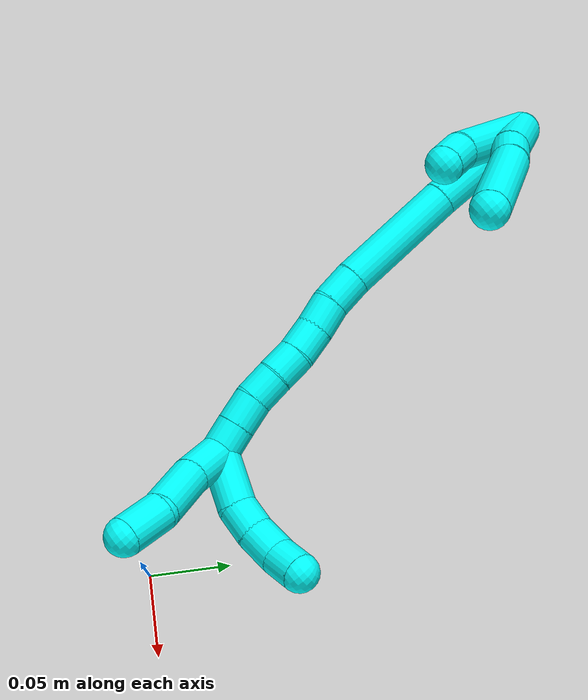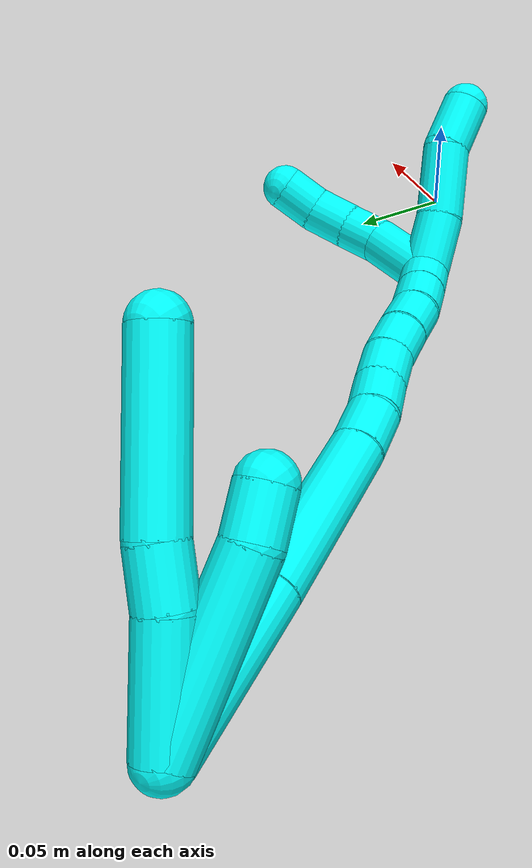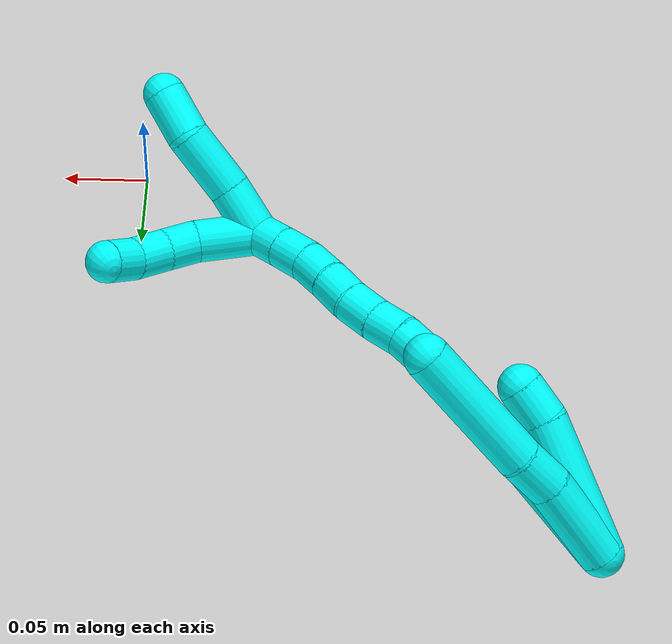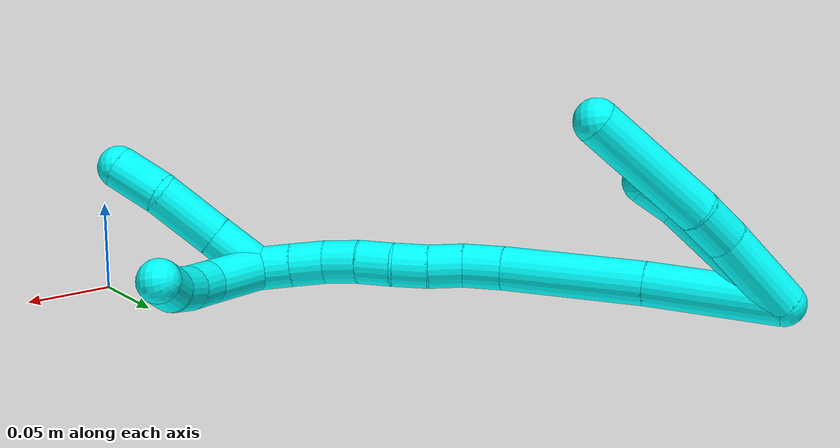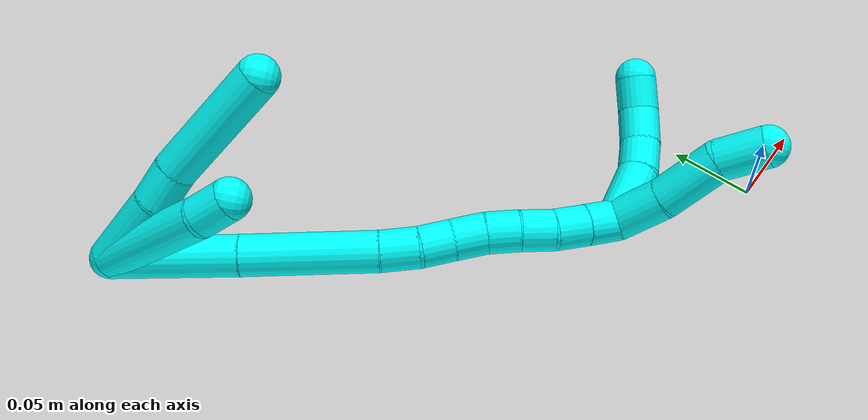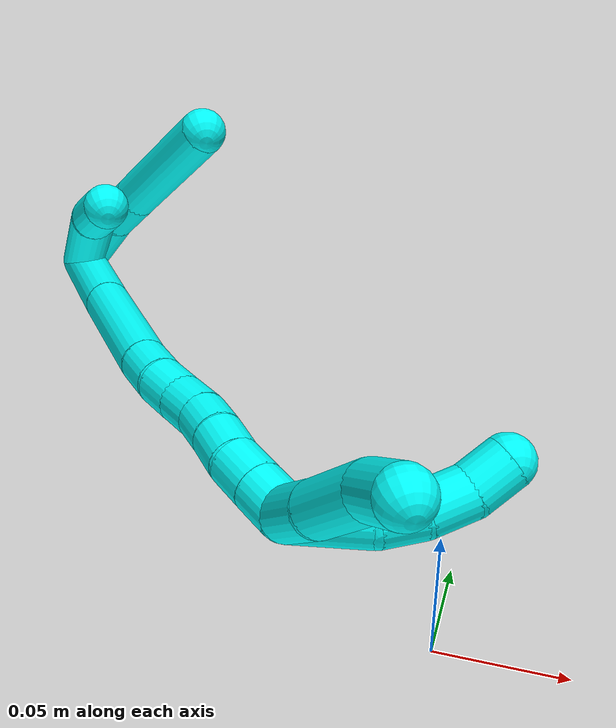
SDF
<sdf version="1.7">
 <world name="default">
  <model name="photoneo_s_sensor">
   <static>1</static>
   <pose>0 0 2 1.57079 1.57079 3.14159</pose>
   <link name="link">
    <inertial><mass>0.1</mass></inertial>
    <sensor name="sensor" type="depth">
     <update_rate>30</update_rate>
     <camera>
      <horizontal_fov>1.22</horizontal_fov>
      <image><width>1920</width><height>1200</height><format>B8G8R8</format></image>
      <clip><near>0.1</near><far>4</far></clip>
      <depth_camera><output>points</output></depth_camera>
     </camera>
     <plugin name="camera_plugin" filename="libgazebo_ros_depth_camera.so">
      <baseline>0.2</baseline>
      <alwaysOn>1</alwaysOn>
      <updateRate>0.0</updateRate>
      <cameraName>camera_ir</cameraName>
      <imageTopicName>/camera/color/image_raw</imageTopicName>
      <cameraInfoTopicName>/camera/color/camera_info</cameraInfoTopicName>
      <depthImageTopicName>/camera/depth/image_raw</depthImageTopicName>
      <depthImageCameraInfoTopicName>/camera/depth/camera_info</depthImageCameraInfoTopicName>
      <pointCloudTopicName>/camera/depth/points</pointCloudTopicName>
      <frameName>fr_optical</frameName>
      <pointCloudCutoff>0.1</pointCloudCutoff>
      <pointCloudCutoffMax>2.0</pointCloudCutoffMax>
      <distortionK1>0</distortionK1>
      <distortionK2>0</distortionK2>
      <distortionK3>0</distortionK3>
      <distortionT1>0</distortionT1>
      <distortionT2>0</distortionT2>
      <CxPrime>0</CxPrime>
      <Cx>0</Cx>
      <Cy>0</Cy>
      <focalLength>0</focalLength>
      <hackBaseline>0</hackBaseline>
     </plugin>
    </sensor>
   </link>
  </model>
  <model name="bin">
   <static>1</static>
   <link name="bottom">
    <collision name="collision-bottom">
     <pose>0 0 -0.01 0 -0 0</pose>
     <geometry><box><size>0.8 0.6 0.02</size></box></geometry>
     <surface>
      <friction><ode><mu>100</mu><mu2>100</mu2></ode></friction>
      <contact><collide_bitmask>65535</collide_bitmask></contact>
     </surface>
    </collision>
   </link>
   <link name="west_wall">
    <collision name="collision-west_wall">
     <pose>-0.41 0 0.1 0 -0 0</pose>
     <geometry><box><size>0.02 0.6 0.2</size></box></geometry>
     <surface>
      <friction><ode><mu>100</mu><mu2>100</mu2></ode></friction>
      <contact><collide_bitmask>65535</collide_bitmask></contact>
     </surface>
    </collision>
   </link>
   <link name="east_wall">
    <collision name="collision-east_wall">
     <pose>0.41 0 0.1 0 -0 0</pose>
     <geometry><box><size>0.02 0.6 0.2</size></box></geometry>
     <surface>
      <friction><ode><mu>100</mu><mu2>100</mu2></ode></friction>
      <contact><collide_bitmask>65535</collide_bitmask></contact>
     </surface>
    </collision>
   </link>
   <link name="south_wall">
    <collision name="collision-south_wall">
     <pose>0 -0.31 0.1 0 -0 0</pose>
     <geometry><box><size>0.8 0.02 0.2</size></box></geometry>
     <surface>
      <friction><ode><mu>100</mu><mu2>100</mu2></ode></friction>
      <contact><collide_bitmask>65535</collide_bitmask></contact>
     </surface>
    </collision>
   </link>
   <link name="north_wall">
    <collision name="collision-north_wall">
     <pose>0 0.31 0.1 0 -0 0</pose>
     <geometry><box><size>0.8 0.02 0.2</size></box></geometry>
     <surface>
      <friction><ode><mu>100</mu><mu2>100</mu2></ode></friction>
      <contact><collide_bitmask>65535</collide_bitmask></contact>
     </surface>
    </collision>
   </link>
  </model>
  <model name="3">
   <static>0</static>
   <link name="3">
    <collision name="collision-cylinder-e_1_2_8">
     <pose>0.009431 -0.021246 -0.009501 1.9913 0.385019 0.584182</pose>
     <geometry><cylinder><radius>0.0125</radius><length>0.050223</length></cylinder></geometry>
     <surface>
      <friction><ode><mu>1.16</mu><mu2>1.16</mu2><slip1>0</slip1><slip2>0</slip2></ode></friction>
      <contact><ode><kp>1e+06</kp><kd>1</kd><max_vel>0</max_vel><min_depth>0.001</min_depth></ode></contact>
     </surface>
    </collision>
    <visual name="visual-cylinder-e_1_2_8">
     <pose>0.009431 -0.021246 -0.009501 1.9913 0.385019 0.584182</pose>
     <geometry><cylinder><radius>0.0125</radius><length>0.050223</length></cylinder></geometry>
     <material><ambient>0.003922 1 0.996078 1</ambient></material>
    </visual>
    <collision name="collision-cylinder-e_2_8_9">
     <pose>0.02523 -0.052055 -0.023023 1.96884 0.550452 0.803887</pose>
     <geometry><cylinder><radius>0.0125</radius><length>0.024347</length></cylinder></geometry>
     <surface>
      <friction><ode><mu>1.16</mu><mu2>1.16</mu2><slip1>0</slip1><slip2>0</slip2></ode></friction>
      <contact><ode><kp>1e+06</kp><kd>1</kd><max_vel>0</max_vel><min_depth>0.001</min_depth></ode></contact>
     </surface>
    </collision>
    <visual name="visual-cylinder-e_2_8_9">
     <pose>0.02523 -0.052055 -0.023023 1.96884 0.550452 0.803887</pose>
     <geometry><cylinder><radius>0.0125</radius><length>0.024347</length></cylinder></geometry>
     <material><ambient>0.003922 1 0.996078 1</ambient></material>
    </visual>
    <collision name="collision-cylinder-e_3_9_6">
     <pose>0.048034 -0.091153 -0.043779 2.08632 0.450928 0.749938</pose>
     <geometry><cylinder><radius>0.0125</radius><length>0.07543</length></cylinder></geometry>
     <surface>
      <friction><ode><mu>1.16</mu><mu2>1.16</mu2><slip1>0</slip1><slip2>0</slip2></ode></friction>
      <contact><ode><kp>1e+06</kp><kd>1</kd><max_vel>0</max_vel><min_depth>0.001</min_depth></ode></contact>
     </surface>
    </collision>
    <visual name="visual-cylinder-e_3_9_6">
     <pose>0.048034 -0.091153 -0.043779 2.08632 0.450928 0.749938</pose>
     <geometry><cylinder><radius>0.0125</radius><length>0.07543</length></cylinder></geometry>
     <material><ambient>0.003922 1 0.996078 1</ambient></material>
    </visual>
    <collision name="collision-cylinder-e_1_2_10">
     <pose>0.002461 -0.031318 -0.023128 2.2069 0.063116 0.124952</pose>
     <geometry><cylinder><radius>0.0125</radius><length>0.07802</length></cylinder></geometry>
     <surface>
      <friction><ode><mu>1.16</mu><mu2>1.16</mu2><slip1>0</slip1><slip2>0</slip2></ode></friction>
      <contact><ode><kp>1e+06</kp><kd>1</kd><max_vel>0</max_vel><min_depth>0.001</min_depth></ode></contact>
     </surface>
    </collision>
    <visual name="visual-cylinder-e_1_2_10">
     <pose>0.002461 -0.031318 -0.023128 2.2069 0.063116 0.124952</pose>
     <geometry><cylinder><radius>0.0125</radius><length>0.07802</length></cylinder></geometry>
     <material><ambient>0.003922 1 0.996078 1</ambient></material>
    </visual>
    <collision name="collision-cylinder-e_2_10_5">
     <pose>0.007908 -0.070621 -0.053192 2.286 0.275202 0.589703</pose>
     <geometry><cylinder><radius>0.0125</radius><length>0.02198</length></cylinder></geometry>
     <surface>
      <friction><ode><mu>1.16</mu><mu2>1.16</mu2><slip1>0</slip1><slip2>0</slip2></ode></friction>
      <contact><ode><kp>1e+06</kp><kd>1</kd><max_vel>0</max_vel><min_depth>0.001</min_depth></ode></contact>
     </surface>
    </collision>
    <visual name="visual-cylinder-e_2_10_5">
     <pose>0.007908 -0.070621 -0.053192 2.286 0.275202 0.589703</pose>
     <geometry><cylinder><radius>0.0125</radius><length>0.02198</length></cylinder></geometry>
     <material><ambient>0.003922 1 0.996078 1</ambient></material>
    </visual>
    <collision name="collision-cylinder-e_1_2_11">
     <pose>0.004007 -0.010872 -0.03625 2.85022 0.105478 0.6907</pose>
     <geometry><cylinder><radius>0.0125</radius><length>0.076112</length></cylinder></geometry>
     <surface>
      <friction><ode><mu>1.16</mu><mu2>1.16</mu2><slip1>0</slip1><slip2>0</slip2></ode></friction>
      <contact><ode><kp>1e+06</kp><kd>1</kd><max_vel>0</max_vel><min_depth>0.001</min_depth></ode></contact>
     </surface>
    </collision>
    <visual name="visual-cylinder-e_1_2_11">
     <pose>0.004007 -0.010872 -0.03625 2.85022 0.105478 0.6907</pose>
     <geometry><cylinder><radius>0.0125</radius><length>0.076112</length></cylinder></geometry>
     <material><ambient>0.003922 1 0.996078 1</ambient></material>
    </visual>
    <collision name="collision-cylinder-e_2_11_12">
     <pose>0.013505 -0.032081 -0.111109 2.87997 0.136543 0.958632</pose>
     <geometry><cylinder><radius>0.0125</radius><length>0.08069</length></cylinder></geometry>
     <surface>
      <friction><ode><mu>1.16</mu><mu2>1.16</mu2><slip1>0</slip1><slip2>0</slip2></ode></friction>
      <contact><ode><kp>1e+06</kp><kd>1</kd><max_vel>0</max_vel><min_depth>0.001</min_depth></ode></contact>
     </surface>
    </collision>
    <visual name="visual-cylinder-e_2_11_12">
     <pose>0.013505 -0.032081 -0.111109 2.87997 0.136543 0.958632</pose>
     <geometry><cylinder><radius>0.0125</radius><length>0.08069</length></cylinder></geometry>
     <material><ambient>0.003922 1 0.996078 1</ambient></material>
    </visual>
    <collision name="collision-cylinder-e_3_12_13">
     <pose>0.021564 -0.045169 -0.16051 2.89212 0.226522 1.47354</pose>
     <geometry><cylinder><radius>0.0125</radius><length>0.022857</length></cylinder></geometry>
     <surface>
      <friction><ode><mu>1.16</mu><mu2>1.16</mu2><slip1>0</slip1><slip2>0</slip2></ode></friction>
      <contact><ode><kp>1e+06</kp><kd>1</kd><max_vel>0</max_vel><min_depth>0.001</min_depth></ode></contact>
     </surface>
    </collision>
    <visual name="visual-cylinder-e_3_12_13">
     <pose>0.021564 -0.045169 -0.16051 2.89212 0.226522 1.47354</pose>
     <geometry><cylinder><radius>0.0125</radius><length>0.022857</length></cylinder></geometry>
     <material><ambient>0.003922 1 0.996078 1</ambient></material>
    </visual>
    <collision name="collision-cylinder-e_4_13_14">
     <pose>0.027961 -0.04959 -0.180443 2.96069 0.390966 2.28256</pose>
     <geometry><cylinder><radius>0.0125</radius><length>0.020103</length></cylinder></geometry>
     <surface>
      <friction><ode><mu>1.16</mu><mu2>1.16</mu2><slip1>0</slip1><slip2>0</slip2></ode></friction>
      <contact><ode><kp>1e+06</kp><kd>1</kd><max_vel>0</max_vel><min_depth>0.001</min_depth></ode></contact>
     </surface>
    </collision>
    <visual name="visual-cylinder-e_4_13_14">
     <pose>0.027961 -0.04959 -0.180443 2.96069 0.390966 2.28256</pose>
     <geometry><cylinder><radius>0.0125</radius><length>0.020103</length></cylinder></geometry>
     <material><ambient>0.003922 1 0.996078 1</ambient></material>
    </visual>
    <collision name="collision-cylinder-e_5_14_15">
     <pose>0.035161 -0.053762 -0.19877 2.87588 0.340267 1.81931</pose>
     <geometry><cylinder><radius>0.0125</radius><length>0.020197</length></cylinder></geometry>
     <surface>
      <friction><ode><mu>1.16</mu><mu2>1.16</mu2><slip1>0</slip1><slip2>0</slip2></ode></friction>
      <contact><ode><kp>1e+06</kp><kd>1</kd><max_vel>0</max_vel><min_depth>0.001</min_depth></ode></contact>
     </surface>
    </collision>
    <visual name="visual-cylinder-e_5_14_15">
     <pose>0.035161 -0.053762 -0.19877 2.87588 0.340267 1.81931</pose>
     <geometry><cylinder><radius>0.0125</radius><length>0.020197</length></cylinder></geometry>
     <material><ambient>0.003922 1 0.996078 1</ambient></material>
    </visual>
    <collision name="collision-cylinder-e_6_15_16">
     <pose>0.040394 -0.058687 -0.217478 2.89218 0.187344 1.28627</pose>
     <geometry><cylinder><radius>0.0125</radius><length>0.020003</length></cylinder></geometry>
     <surface>
      <friction><ode><mu>1.16</mu><mu2>1.16</mu2><slip1>0</slip1><slip2>0</slip2></ode></friction>
      <contact><ode><kp>1e+06</kp><kd>1</kd><max_vel>0</max_vel><min_depth>0.001</min_depth></ode></contact>
     </surface>
    </collision>
    <visual name="visual-cylinder-e_6_15_16">
     <pose>0.040394 -0.058687 -0.217478 2.89218 0.187344 1.28627</pose>
     <geometry><cylinder><radius>0.0125</radius><length>0.020003</length></cylinder></geometry>
     <material><ambient>0.003922 1 0.996078 1</ambient></material>
    </visual>
    <collision name="collision-cylinder-e_7_16_17">
     <pose>0.044078 -0.062677 -0.236724 2.98208 0.182802 1.70732</pose>
     <geometry><cylinder><radius>0.0125</radius><length>0.020033</length></cylinder></geometry>
     <surface>
      <friction><ode><mu>1.16</mu><mu2>1.16</mu2><slip1>0</slip1><slip2>0</slip2></ode></friction>
      <contact><ode><kp>1e+06</kp><kd>1</kd><max_vel>0</max_vel><min_depth>0.001</min_depth></ode></contact>
     </surface>
    </collision>
    <visual name="visual-cylinder-e_7_16_17">
     <pose>0.044078 -0.062677 -0.236724 2.98208 0.182802 1.70732</pose>
     <geometry><cylinder><radius>0.0125</radius><length>0.020033</length></cylinder></geometry>
     <material><ambient>0.003922 1 0.996078 1</ambient></material>
    </visual>
    <collision name="collision-cylinder-e_8_17_18">
     <pose>0.049338 -0.065279 -0.255784 3.03091 0.35105 2.53606</pose>
     <geometry><cylinder><radius>0.0125</radius><length>0.020004</length></cylinder></geometry>
     <surface>
      <friction><ode><mu>1.16</mu><mu2>1.16</mu2><slip1>0</slip1><slip2>0</slip2></ode></friction>
      <contact><ode><kp>1e+06</kp><kd>1</kd><max_vel>0</max_vel><min_depth>0.001</min_depth></ode></contact>
     </surface>
    </collision>
    <visual name="visual-cylinder-e_8_17_18">
     <pose>0.049338 -0.065279 -0.255784 3.03091 0.35105 2.53606</pose>
     <geometry><cylinder><radius>0.0125</radius><length>0.020004</length></cylinder></geometry>
     <material><ambient>0.003922 1 0.996078 1</ambient></material>
    </visual>
    <collision name="collision-cylinder-e_9_18_1">
     <pose>0.05642 -0.067257 -0.274384 3.04046 0.372764 2.61717</pose>
     <geometry><cylinder><radius>0.0125</radius><length>0.020001</length></cylinder></geometry>
     <surface>
      <friction><ode><mu>1.16</mu><mu2>1.16</mu2><slip1>0</slip1><slip2>0</slip2></ode></friction>
      <contact><ode><kp>1e+06</kp><kd>1</kd><max_vel>0</max_vel><min_depth>0.001</min_depth></ode></contact>
     </surface>
    </collision>
    <visual name="visual-cylinder-e_9_18_1">
     <pose>0.05642 -0.067257 -0.274384 3.04046 0.372764 2.61717</pose>
     <geometry><cylinder><radius>0.0125</radius><length>0.020001</length></cylinder></geometry>
     <material><ambient>0.003922 1 0.996078 1</ambient></material>
    </visual>
    <collision name="collision-cylinder-e_1_1_19">
     <pose>0.063439 -0.08006 -0.293423 2.25994 0.216314 0.452415</pose>
     <geometry><cylinder><radius>0.0125</radius><length>0.031473</length></cylinder></geometry>
     <surface>
      <friction><ode><mu>1.16</mu><mu2>1.16</mu2><slip1>0</slip1><slip2>0</slip2></ode></friction>
      <contact><ode><kp>1e+06</kp><kd>1</kd><max_vel>0</max_vel><min_depth>0.001</min_depth></ode></contact>
     </surface>
    </collision>
    <visual name="visual-cylinder-e_1_1_19">
     <pose>0.063439 -0.08006 -0.293423 2.25994 0.216314 0.452415</pose>
     <geometry><cylinder><radius>0.0125</radius><length>0.031473</length></cylinder></geometry>
     <material><ambient>0.003922 1 0.996078 1</ambient></material>
    </visual>
    <collision name="collision-cylinder-e_2_19_20">
     <pose>0.073537 -0.107262 -0.313621 2.16766 0.347626 0.640392</pose>
     <geometry><cylinder><radius>0.0125</radius><length>0.039454</length></cylinder></geometry>
     <surface>
      <friction><ode><mu>1.16</mu><mu2>1.16</mu2><slip1>0</slip1><slip2>0</slip2></ode></friction>
      <contact><ode><kp>1e+06</kp><kd>1</kd><max_vel>0</max_vel><min_depth>0.001</min_depth></ode></contact>
     </surface>
    </collision>
    <visual name="visual-cylinder-e_2_19_20">
     <pose>0.073537 -0.107262 -0.313621 2.16766 0.347626 0.640392</pose>
     <geometry><cylinder><radius>0.0125</radius><length>0.039454</length></cylinder></geometry>
     <material><ambient>0.003922 1 0.996078 1</ambient></material>
    </visual>
    <collision name="collision-cylinder-e_3_20_4">
     <pose>0.081969 -0.132261 -0.334773 2.40857 0.118018 0.305415</pose>
     <geometry><cylinder><radius>0.0125</radius><length>0.029073</length></cylinder></geometry>
     <surface>
      <friction><ode><mu>1.16</mu><mu2>1.16</mu2><slip1>0</slip1><slip2>0</slip2></ode></friction>
      <contact><ode><kp>1e+06</kp><kd>1</kd><max_vel>0</max_vel><min_depth>0.001</min_depth></ode></contact>
     </surface>
    </collision>
    <visual name="visual-cylinder-e_3_20_4">
     <pose>0.081969 -0.132261 -0.334773 2.40857 0.118018 0.305415</pose>
     <geometry><cylinder><radius>0.0125</radius><length>0.029073</length></cylinder></geometry>
     <material><ambient>0.003922 1 0.996078 1</ambient></material>
    </visual>
    <collision name="collision-cylinder-e_1_1_21">
     <pose>0.077724 -0.06907 -0.289264 2.98729 1.25958 2.93024</pose>
     <geometry><cylinder><radius>0.0125</radius><length>0.037106</length></cylinder></geometry>
     <surface>
      <friction><ode><mu>1.16</mu><mu2>1.16</mu2><slip1>0</slip1><slip2>0</slip2></ode></friction>
      <contact><ode><kp>1e+06</kp><kd>1</kd><max_vel>0</max_vel><min_depth>0.001</min_depth></ode></contact>
     </surface>
    </collision>
    <visual name="visual-cylinder-e_1_1_21">
     <pose>0.077724 -0.06907 -0.289264 2.98729 1.25958 2.93024</pose>
     <geometry><cylinder><radius>0.0125</radius><length>0.037106</length></cylinder></geometry>
     <material><ambient>0.003922 1 0.996078 1</ambient></material>
    </visual>
    <collision name="collision-cylinder-e_2_21_22">
     <pose>0.105487 -0.070749 -0.294902 1.60068 1.4912 1.52102</pose>
     <geometry><cylinder><radius>0.0125</radius><length>0.020268</length></cylinder></geometry>
     <surface>
      <friction><ode><mu>1.16</mu><mu2>1.16</mu2><slip1>0</slip1><slip2>0</slip2></ode></friction>
      <contact><ode><kp>1e+06</kp><kd>1</kd><max_vel>0</max_vel><min_depth>0.001</min_depth></ode></contact>
     </surface>
    </collision>
    <visual name="visual-cylinder-e_2_21_22">
     <pose>0.105487 -0.070749 -0.294902 1.60068 1.4912 1.52102</pose>
     <geometry><cylinder><radius>0.0125</radius><length>0.020268</length></cylinder></geometry>
     <material><ambient>0.003922 1 0.996078 1</ambient></material>
    </visual>
    <collision name="collision-cylinder-e_3_22_23">
     <pose>0.126265 -0.073585 -0.293155 0.853629 1.32363 0.680958</pose>
     <geometry><cylinder><radius>0.0125</radius><length>0.02202</length></cylinder></geometry>
     <surface>
      <friction><ode><mu>1.16</mu><mu2>1.16</mu2><slip1>0</slip1><slip2>0</slip2></ode></friction>
      <contact><ode><kp>1e+06</kp><kd>1</kd><max_vel>0</max_vel><min_depth>0.001</min_depth></ode></contact>
     </surface>
    </collision>
    <visual name="visual-cylinder-e_3_22_23">
     <pose>0.126265 -0.073585 -0.293155 0.853629 1.32363 0.680958</pose>
     <geometry><cylinder><radius>0.0125</radius><length>0.02202</length></cylinder></geometry>
     <material><ambient>0.003922 1 0.996078 1</ambient></material>
    </visual>
    <collision name="collision-cylinder-e_4_23_3">
     <pose>0.145848 -0.07989 -0.288466 0.97171 1.04435 0.59003</pose>
     <geometry><cylinder><radius>0.0125</radius><length>0.020606</length></cylinder></geometry>
     <surface>
      <friction><ode><mu>1.16</mu><mu2>1.16</mu2><slip1>0</slip1><slip2>0</slip2></ode></friction>
      <contact><ode><kp>1e+06</kp><kd>1</kd><max_vel>0</max_vel><min_depth>0.001</min_depth></ode></contact>
     </surface>
    </collision>
    <visual name="visual-cylinder-e_4_23_3">
     <pose>0.145848 -0.07989 -0.288466 0.97171 1.04435 0.59003</pose>
     <geometry><cylinder><radius>0.0125</radius><length>0.020606</length></cylinder></geometry>
     <material><ambient>0.003922 1 0.996078 1</ambient></material>
    </visual>
    <collision name="collision-sphere-3">
     <pose>0.154756 -0.084165 -0.285546 0 -0 0</pose>
     <geometry><sphere><radius>0.0125</radius></sphere></geometry>
     <surface>
      <friction><ode><mu>1.16</mu><mu2>1.16</mu2><slip1>0</slip1><slip2>0</slip2></ode></friction>
      <contact><ode><kp>1e+06</kp><kd>1</kd><max_vel>0</max_vel><min_depth>0.001</min_depth></ode></contact>
     </surface>
    </collision>
    <visual name="visual-sphere-3">
     <pose>0.154756 -0.084165 -0.285546 0 -0 0</pose>
     <geometry><sphere><radius>0.0125</radius></sphere></geometry>
     <material><ambient>0.003922 1 0.996078 1</ambient></material>
    </visual>
    <collision name="collision-sphere-23">
     <pose>0.13694 -0.075615 -0.291385 0 -0 0</pose>
     <geometry><sphere><radius>0.0125</radius></sphere></geometry>
     <surface>
      <friction><ode><mu>1.16</mu><mu2>1.16</mu2><slip1>0</slip1><slip2>0</slip2></ode></friction>
      <contact><ode><kp>1e+06</kp><kd>1</kd><max_vel>0</max_vel><min_depth>0.001</min_depth></ode></contact>
     </surface>
    </collision>
    <visual name="visual-sphere-23">
     <pose>0.13694 -0.075615 -0.291385 0 -0 0</pose>
     <geometry><sphere><radius>0.0125</radius></sphere></geometry>
     <material><ambient>0.003922 1 0.996078 1</ambient></material>
    </visual>
    <collision name="collision-sphere-22">
     <pose>0.115589 -0.071554 -0.294926 0 -0 0</pose>
     <geometry><sphere><radius>0.0125</radius></sphere></geometry>
     <surface>
      <friction><ode><mu>1.16</mu><mu2>1.16</mu2><slip1>0</slip1><slip2>0</slip2></ode></friction>
      <contact><ode><kp>1e+06</kp><kd>1</kd><max_vel>0</max_vel><min_depth>0.001</min_depth></ode></contact>
     </surface>
    </collision>
    <visual name="visual-sphere-22">
     <pose>0.115589 -0.071554 -0.294926 0 -0 0</pose>
     <geometry><sphere><radius>0.0125</radius></sphere></geometry>
     <material><ambient>0.003922 1 0.996078 1</ambient></material>
    </visual>
    <collision name="collision-sphere-21">
     <pose>0.095385 -0.069944 -0.294877 0 -0 0</pose>
     <geometry><sphere><radius>0.0125</radius></sphere></geometry>
     <surface>
      <friction><ode><mu>1.16</mu><mu2>1.16</mu2><slip1>0</slip1><slip2>0</slip2></ode></friction>
      <contact><ode><kp>1e+06</kp><kd>1</kd><max_vel>0</max_vel><min_depth>0.001</min_depth></ode></contact>
     </surface>
    </collision>
    <visual name="visual-sphere-21">
     <pose>0.095385 -0.069944 -0.294877 0 -0 0</pose>
     <geometry><sphere><radius>0.0125</radius></sphere></geometry>
     <material><ambient>0.003922 1 0.996078 1</ambient></material>
    </visual>
    <collision name="collision-sphere-4">
     <pose>0.083681 -0.14192 -0.345501 0 -0 0</pose>
     <geometry><sphere><radius>0.0125</radius></sphere></geometry>
     <surface>
      <friction><ode><mu>1.16</mu><mu2>1.16</mu2><slip1>0</slip1><slip2>0</slip2></ode></friction>
      <contact><ode><kp>1e+06</kp><kd>1</kd><max_vel>0</max_vel><min_depth>0.001</min_depth></ode></contact>
     </surface>
    </collision>
    <visual name="visual-sphere-4">
     <pose>0.083681 -0.14192 -0.345501 0 -0 0</pose>
     <geometry><sphere><radius>0.0125</radius></sphere></geometry>
     <material><ambient>0.003922 1 0.996078 1</ambient></material>
    </visual>
    <collision name="collision-sphere-20">
     <pose>0.080258 -0.122602 -0.324046 0 -0 0</pose>
     <geometry><sphere><radius>0.0125</radius></sphere></geometry>
     <surface>
      <friction><ode><mu>1.16</mu><mu2>1.16</mu2><slip1>0</slip1><slip2>0</slip2></ode></friction>
      <contact><ode><kp>1e+06</kp><kd>1</kd><max_vel>0</max_vel><min_depth>0.001</min_depth></ode></contact>
     </surface>
    </collision>
    <visual name="visual-sphere-20">
     <pose>0.080258 -0.122602 -0.324046 0 -0 0</pose>
     <geometry><sphere><radius>0.0125</radius></sphere></geometry>
     <material><ambient>0.003922 1 0.996078 1</ambient></material>
    </visual>
    <collision name="collision-sphere-5">
     <pose>0.010894 -0.078605 -0.060128 0 -0 0</pose>
     <geometry><sphere><radius>0.0125</radius></sphere></geometry>
     <surface>
      <friction><ode><mu>1.16</mu><mu2>1.16</mu2><slip1>0</slip1><slip2>0</slip2></ode></friction>
      <contact><ode><kp>1e+06</kp><kd>1</kd><max_vel>0</max_vel><min_depth>0.001</min_depth></ode></contact>
     </surface>
    </collision>
    <visual name="visual-sphere-5">
     <pose>0.010894 -0.078605 -0.060128 0 -0 0</pose>
     <geometry><sphere><radius>0.0125</radius></sphere></geometry>
     <material><ambient>0.003922 1 0.996078 1</ambient></material>
    </visual>
    <collision name="collision-sphere-10">
     <pose>0.004921 -0.062636 -0.046256 0 -0 0</pose>
     <geometry><sphere><radius>0.0125</radius></sphere></geometry>
     <surface>
      <friction><ode><mu>1.16</mu><mu2>1.16</mu2><slip1>0</slip1><slip2>0</slip2></ode></friction>
      <contact><ode><kp>1e+06</kp><kd>1</kd><max_vel>0</max_vel><min_depth>0.001</min_depth></ode></contact>
     </surface>
    </collision>
    <visual name="visual-sphere-10">
     <pose>0.004921 -0.062636 -0.046256 0 -0 0</pose>
     <geometry><sphere><radius>0.0125</radius></sphere></geometry>
     <material><ambient>0.003922 1 0.996078 1</ambient></material>
    </visual>
    <collision name="collision-sphere-6">
     <pose>0.06447 -0.120687 -0.060514 0 -0 0</pose>
     <geometry><sphere><radius>0.0125</radius></sphere></geometry>
     <surface>
      <friction><ode><mu>1.16</mu><mu2>1.16</mu2><slip1>0</slip1><slip2>0</slip2></ode></friction>
      <contact><ode><kp>1e+06</kp><kd>1</kd><max_vel>0</max_vel><min_depth>0.001</min_depth></ode></contact>
     </surface>
    </collision>
    <visual name="visual-sphere-6">
     <pose>0.06447 -0.120687 -0.060514 0 -0 0</pose>
     <geometry><sphere><radius>0.0125</radius></sphere></geometry>
     <material><ambient>0.003922 1 0.996078 1</ambient></material>
    </visual>
    <collision name="collision-sphere-9">
     <pose>0.031598 -0.06162 -0.027045 0 -0 0</pose>
     <geometry><sphere><radius>0.0125</radius></sphere></geometry>
     <surface>
      <friction><ode><mu>1.16</mu><mu2>1.16</mu2><slip1>0</slip1><slip2>0</slip2></ode></friction>
      <contact><ode><kp>1e+06</kp><kd>1</kd><max_vel>0</max_vel><min_depth>0.001</min_depth></ode></contact>
     </surface>
    </collision>
    <visual name="visual-sphere-9">
     <pose>0.031598 -0.06162 -0.027045 0 -0 0</pose>
     <geometry><sphere><radius>0.0125</radius></sphere></geometry>
     <material><ambient>0.003922 1 0.996078 1</ambient></material>
    </visual>
    <collision name="collision-sphere-2">
     <geometry><sphere><radius>0.0125</radius></sphere></geometry>
     <surface>
      <friction><ode><mu>1.16</mu><mu2>1.16</mu2><slip1>0</slip1><slip2>0</slip2></ode></friction>
      <contact><ode><kp>1e+06</kp><kd>1</kd><max_vel>0</max_vel><min_depth>0.001</min_depth></ode></contact>
     </surface>
    </collision>
    <visual name="visual-sphere-2">
     <geometry><sphere><radius>0.0125</radius></sphere></geometry>
     <material><ambient>0.003922 1 0.996078 1</ambient></material>
    </visual>
    <collision name="collision-sphere-19">
     <pose>0.066817 -0.091922 -0.303197 0 -0 0</pose>
     <geometry><sphere><radius>0.0125</radius></sphere></geometry>
     <surface>
      <friction><ode><mu>1.16</mu><mu2>1.16</mu2><slip1>0</slip1><slip2>0</slip2></ode></friction>
      <contact><ode><kp>1e+06</kp><kd>1</kd><max_vel>0</max_vel><min_depth>0.001</min_depth></ode></contact>
     </surface>
    </collision>
    <visual name="visual-sphere-19">
     <pose>0.066817 -0.091922 -0.303197 0 -0 0</pose>
     <geometry><sphere><radius>0.0125</radius></sphere></geometry>
     <material><ambient>0.003922 1 0.996078 1</ambient></material>
    </visual>
    <collision name="collision-sphere-8">
     <pose>0.018863 -0.042491 -0.019001 0 -0 0</pose>
     <geometry><sphere><radius>0.0125</radius></sphere></geometry>
     <surface>
      <friction><ode><mu>1.16</mu><mu2>1.16</mu2><slip1>0</slip1><slip2>0</slip2></ode></friction>
      <contact><ode><kp>1e+06</kp><kd>1</kd><max_vel>0</max_vel><min_depth>0.001</min_depth></ode></contact>
     </surface>
    </collision>
    <visual name="visual-sphere-8">
     <pose>0.018863 -0.042491 -0.019001 0 -0 0</pose>
     <geometry><sphere><radius>0.0125</radius></sphere></geometry>
     <material><ambient>0.003922 1 0.996078 1</ambient></material>
    </visual>
    <collision name="collision-sphere-11">
     <pose>0.008013 -0.021743 -0.072499 0 -0 0</pose>
     <geometry><sphere><radius>0.0125</radius></sphere></geometry>
     <surface>
      <friction><ode><mu>1.16</mu><mu2>1.16</mu2><slip1>0</slip1><slip2>0</slip2></ode></friction>
      <contact><ode><kp>1e+06</kp><kd>1</kd><max_vel>0</max_vel><min_depth>0.001</min_depth></ode></contact>
     </surface>
    </collision>
    <visual name="visual-sphere-11">
     <pose>0.008013 -0.021743 -0.072499 0 -0 0</pose>
     <geometry><sphere><radius>0.0125</radius></sphere></geometry>
     <material><ambient>0.003922 1 0.996078 1</ambient></material>
    </visual>
    <collision name="collision-sphere-12">
     <pose>0.018997 -0.042419 -0.149718 0 -0 0</pose>
     <geometry><sphere><radius>0.0125</radius></sphere></geometry>
     <surface>
      <friction><ode><mu>1.16</mu><mu2>1.16</mu2><slip1>0</slip1><slip2>0</slip2></ode></friction>
      <contact><ode><kp>1e+06</kp><kd>1</kd><max_vel>0</max_vel><min_depth>0.001</min_depth></ode></contact>
     </surface>
    </collision>
    <visual name="visual-sphere-12">
     <pose>0.018997 -0.042419 -0.149718 0 -0 0</pose>
     <geometry><sphere><radius>0.0125</radius></sphere></geometry>
     <material><ambient>0.003922 1 0.996078 1</ambient></material>
    </visual>
    <collision name="collision-sphere-13">
     <pose>0.02413 -0.047918 -0.171302 0 -0 0</pose>
     <geometry><sphere><radius>0.0125</radius></sphere></geometry>
     <surface>
      <friction><ode><mu>1.16</mu><mu2>1.16</mu2><slip1>0</slip1><slip2>0</slip2></ode></friction>
      <contact><ode><kp>1e+06</kp><kd>1</kd><max_vel>0</max_vel><min_depth>0.001</min_depth></ode></contact>
     </surface>
    </collision>
    <visual name="visual-sphere-13">
     <pose>0.02413 -0.047918 -0.171302 0 -0 0</pose>
     <geometry><sphere><radius>0.0125</radius></sphere></geometry>
     <material><ambient>0.003922 1 0.996078 1</ambient></material>
    </visual>
    <collision name="collision-sphere-14">
     <pose>0.031791 -0.051262 -0.189585 0 -0 0</pose>
     <geometry><sphere><radius>0.0125</radius></sphere></geometry>
     <surface>
      <friction><ode><mu>1.16</mu><mu2>1.16</mu2><slip1>0</slip1><slip2>0</slip2></ode></friction>
      <contact><ode><kp>1e+06</kp><kd>1</kd><max_vel>0</max_vel><min_depth>0.001</min_depth></ode></contact>
     </surface>
    </collision>
    <visual name="visual-sphere-14">
     <pose>0.031791 -0.051262 -0.189585 0 -0 0</pose>
     <geometry><sphere><radius>0.0125</radius></sphere></geometry>
     <material><ambient>0.003922 1 0.996078 1</ambient></material>
    </visual>
    <collision name="collision-sphere-15">
     <pose>0.038532 -0.056262 -0.207955 0 -0 0</pose>
     <geometry><sphere><radius>0.0125</radius></sphere></geometry>
     <surface>
      <friction><ode><mu>1.16</mu><mu2>1.16</mu2><slip1>0</slip1><slip2>0</slip2></ode></friction>
      <contact><ode><kp>1e+06</kp><kd>1</kd><max_vel>0</max_vel><min_depth>0.001</min_depth></ode></contact>
     </surface>
    </collision>
    <visual name="visual-sphere-15">
     <pose>0.038532 -0.056262 -0.207955 0 -0 0</pose>
     <geometry><sphere><radius>0.0125</radius></sphere></geometry>
     <material><ambient>0.003922 1 0.996078 1</ambient></material>
    </visual>
    <collision name="collision-sphere-16">
     <pose>0.042257 -0.061113 -0.227 0 -0 0</pose>
     <geometry><sphere><radius>0.0125</radius></sphere></geometry>
     <surface>
      <friction><ode><mu>1.16</mu><mu2>1.16</mu2><slip1>0</slip1><slip2>0</slip2></ode></friction>
      <contact><ode><kp>1e+06</kp><kd>1</kd><max_vel>0</max_vel><min_depth>0.001</min_depth></ode></contact>
     </surface>
    </collision>
    <visual name="visual-sphere-16">
     <pose>0.042257 -0.061113 -0.227 0 -0 0</pose>
     <geometry><sphere><radius>0.0125</radius></sphere></geometry>
     <material><ambient>0.003922 1 0.996078 1</ambient></material>
    </visual>
    <collision name="collision-sphere-17">
     <pose>0.045899 -0.064242 -0.246449 0 -0 0</pose>
     <geometry><sphere><radius>0.0125</radius></sphere></geometry>
     <surface>
      <friction><ode><mu>1.16</mu><mu2>1.16</mu2><slip1>0</slip1><slip2>0</slip2></ode></friction>
      <contact><ode><kp>1e+06</kp><kd>1</kd><max_vel>0</max_vel><min_depth>0.001</min_depth></ode></contact>
     </surface>
    </collision>
    <visual name="visual-sphere-17">
     <pose>0.045899 -0.064242 -0.246449 0 -0 0</pose>
     <geometry><sphere><radius>0.0125</radius></sphere></geometry>
     <material><ambient>0.003922 1 0.996078 1</ambient></material>
    </visual>
    <collision name="collision-sphere-18">
     <pose>0.052778 -0.066317 -0.265118 0 -0 0</pose>
     <geometry><sphere><radius>0.0125</radius></sphere></geometry>
     <surface>
      <friction><ode><mu>1.16</mu><mu2>1.16</mu2><slip1>0</slip1><slip2>0</slip2></ode></friction>
      <contact><ode><kp>1e+06</kp><kd>1</kd><max_vel>0</max_vel><min_depth>0.001</min_depth></ode></contact>
     </surface>
    </collision>
    <visual name="visual-sphere-18">
     <pose>0.052778 -0.066317 -0.265118 0 -0 0</pose>
     <geometry><sphere><radius>0.0125</radius></sphere></geometry>
     <material><ambient>0.003922 1 0.996078 1</ambient></material>
    </visual>
    <collision name="collision-sphere-1">
     <pose>0.060062 -0.068197 -0.28365 0 -0 0</pose>
     <geometry><sphere><radius>0.0125</radius></sphere></geometry>
     <surface>
      <friction><ode><mu>1.16</mu><mu2>1.16</mu2><slip1>0</slip1><slip2>0</slip2></ode></friction>
      <contact><ode><kp>1e+06</kp><kd>1</kd><max_vel>0</max_vel><min_depth>0.001</min_depth></ode></contact>
     </surface>
    </collision>
    <visual name="visual-sphere-1">
     <pose>0.060062 -0.068197 -0.28365 0 -0 0</pose>
     <geometry><sphere><radius>0.0125</radius></sphere></geometry>
     <material><ambient>0.003922 1 0.996078 1</ambient></material>
    </visual>
    <inertial>
     <pose>0.040176 -0.056904 -0.147329 0 -0 0</pose>
     <mass>0.75</mass>
     <inertia><ixx>0.000281</ixx><ixy>0</ixy><ixz>0</ixz><iyy>1.2e-05</iyy><iyz>0</iyz><izz>2.5e-05</izz></inertia>
    </inertial>
   </link>
   <pose>-0.263481 0.278296 0.012518 -1.32544 -0.028516 0.504407</pose>
  </model>
 </world>
</sdf>
